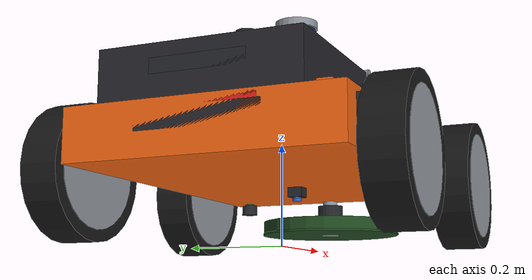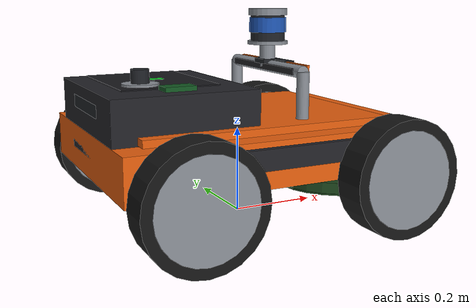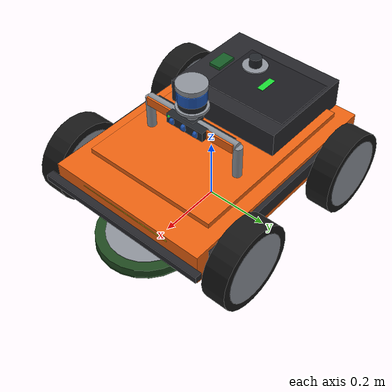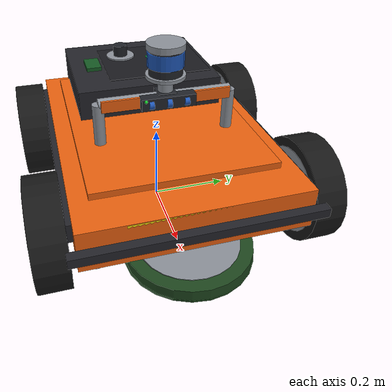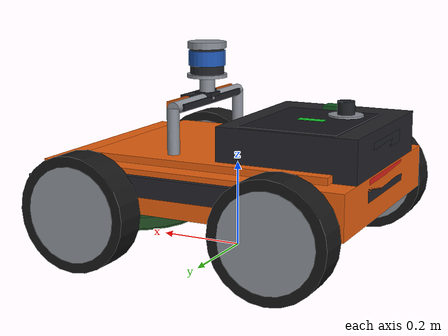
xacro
<?xml version="1.0"?>
<robot xmlns:xacro="http://www.ros.org/wiki/xacro"
       xmlns:gz="http://gazebosim.org/schema"
       name="lawnmower">

  <!-- ===== CHASSIS ===== -->
  <!-- Low-profile, wide mower body -->
  <xacro:property name="base_l"  value="0.72"/>
  <xacro:property name="base_w"  value="0.52"/>
  <xacro:property name="base_h"  value="0.10"/>   <!-- flatter than agribot -->
  <xacro:property name="base_m"  value="22.0"/>   <!-- heavier: battery + deck motor -->

  <!-- ===== WHEELS ===== -->
  <!-- Larger rear drive wheels typical of mowers -->
  <xacro:property name="wr"    value="0.130"/>   <!-- radius -->
  <xacro:property name="ww"    value="0.075"/>   <!-- width  -->
  <xacro:property name="wm"    value="1.6"/>     <!-- mass   -->
  <xacro:property name="wx"    value="0.230"/>   <!-- half wheelbase -->
  <xacro:property name="wy"    value="0.310"/>   <!-- half track -->

  <!-- ===== CUTTING DECK ARM ===== -->
  <xacro:property name="deck_r" value="0.016"/>  <!-- arm tube radius -->

  <!-- ==============================================================
       INERTIA HELPERS
       ============================================================== -->
  <xacro:macro name="box_inertia" params="m l w h">
    <inertial>
      <mass value="${m}"/>
      <inertia ixx="${m*(w*w+h*h)/12}" ixy="0" ixz="0"
               iyy="${m*(l*l+h*h)/12}" iyz="0"
               izz="${m*(l*l+w*w)/12}"/>
    </inertial>
  </xacro:macro>

  <xacro:macro name="cyl_inertia" params="m r h">
    <inertial>
      <mass value="${m}"/>
      <inertia ixx="${m*(3*r*r+h*h)/12}" ixy="0" ixz="0"
               iyy="${m*(3*r*r+h*h)/12}" iyz="0"
               izz="${m*r*r/2}"/>
    </inertial>
  </xacro:macro>

  <xacro:macro name="null_inertia">
    <inertial>
      <mass value="0.001"/>
      <inertia ixx="0.000001" ixy="0" ixz="0" iyy="0.000001" iyz="0" izz="0.000001"/>
    </inertial>
  </xacro:macro>

  <!-- ==============================================================
       MATERIALS
       ============================================================== -->
  <!-- Chassis — bright safety orange (consumer mower aesthetic) -->
  <material name="body_orange">  <color rgba="0.92 0.38 0.06 1.0"/></material>
  <!-- Accent — dark charcoal for trim panels -->
  <material name="accent_dark">  <color rgba="0.14 0.14 0.16 1.0"/></material>
  <!-- Frame rails — brushed aluminium -->
  <material name="alu_frame">    <color rgba="0.55 0.57 0.60 1.0"/></material>
  <!-- Tyre rubber -->
  <material name="rubber_black"> <color rgba="0.09 0.09 0.09 1.0"/></material>
  <!-- Wheel hub -->
  <material name="hub_alloy">    <color rgba="0.78 0.80 0.83 1.0"/></material>
  <!-- Sensor housing — dark charcoal -->
  <material name="sensor_dark">  <color rgba="0.13 0.14 0.16 1.0"/></material>
  <!-- Sensor glass / lens -->
  <material name="lens_blue">    <color rgba="0.18 0.44 0.88 0.85"/></material>
  <!-- PCB green -->
  <material name="pcb_green">    <color rgba="0.08 0.35 0.14 1.0"/></material>
  <!-- Battery black -->
  <material name="batt_dark">    <color rgba="0.10 0.10 0.12 1.0"/></material>
  <!-- Status LED yellow -->
  <material name="led_yellow">   <color rgba="0.95 0.85 0.05 1.0"/></material>
  <!-- Status LED red -->
  <material name="led_red">      <color rgba="0.88 0.12 0.10 1.0"/></material>
  <!-- Status LED green -->
  <material name="led_green">    <color rgba="0.10 0.85 0.20 1.0"/></material>
  <!-- Cutting deck / blade — steel silver -->
  <material name="steel_silver"> <color rgba="0.72 0.74 0.78 1.0"/></material>
  <!-- Blade disc (spinning) — polished steel -->
  <material name="blade_steel">  <color rgba="0.85 0.87 0.90 1.0"/></material>
  <!-- Deck housing — dark green plastic (grass stains!) -->
  <material name="deck_green">   <color rgba="0.12 0.28 0.12 1.0"/></material>

  <!-- ==============================================================
       WHEEL MACRO
       Knobby lawn mower tyre with hub
       ============================================================== -->
  <xacro:macro name="wheel" params="prefix x_s y_s">
    <link name="${prefix}_wheel">
      <!-- Main tyre -->
      <visual>
        <origin xyz="0 0 0" rpy="${pi/2} 0 0"/>
        <geometry><cylinder radius="${wr}" length="${ww}"/></geometry>
        <material name="rubber_black"/>
      </visual>
      <!-- Inner rim channel -->
      <visual>
        <origin xyz="0 0 0" rpy="${pi/2} 0 0"/>
        <geometry><cylinder radius="${wr*0.82}" length="${ww*1.02}"/></geometry>
        <material name="alu_frame"/>
      </visual>
      <!-- Hub disc -->
      <visual>
        <origin xyz="0 ${y_s*0.015} 0" rpy="${pi/2} 0 0"/>
        <geometry><cylinder radius="${wr*0.48}" length="${ww*0.30}"/></geometry>
        <material name="hub_alloy"/>
      </visual>
      <!-- Hub centre cap — orange accent matching body -->
      <visual>
        <origin xyz="0 ${y_s*0.022} 0" rpy="${pi/2} 0 0"/>
        <geometry><cylinder radius="${wr*0.15}" length="${ww*0.20}"/></geometry>
        <material name="body_orange"/>
      </visual>
      <collision>
        <origin xyz="0 0 0" rpy="${pi/2} 0 0"/>
        <geometry><cylinder radius="${wr}" length="${ww}"/></geometry>
      </collision>
      <xacro:cyl_inertia m="${wm}" r="${wr}" h="${ww}"/>
    </link>

    <joint name="${prefix}_wheel_joint" type="continuous">
      <parent link="base_link"/>
      <child  link="${prefix}_wheel"/>
      <origin xyz="${x_s*wx} ${y_s*wy} ${-base_h/2 + 0.005}" rpy="0 0 0"/>
      <axis xyz="0 1 0"/>
      <!-- Mowers are slower — lower velocity limit -->
      <limit effort="30.0" velocity="8.0"/>
      <dynamics damping="0.30" friction="0.60"/>
    </joint>

    <gazebo reference="${prefix}_wheel">
      <!-- Tuned for grass contact: higher lateral friction -->
      <mu1>1.2</mu1>
      <mu2>0.20</mu2>
      <fdir1>1 0 0</fdir1>
      <kp>6e5</kp>
      <kd>25.0</kd>
      <material>Gazebo/Black</material>
    </gazebo>
  </xacro:macro>

  <!-- ==============================================================
       BASE FOOTPRINT
       ============================================================== -->
  <link name="base_footprint"/>
  <joint name="base_footprint_joint" type="fixed">
    <parent link="base_footprint"/>
    <child  link="base_link"/>
    <origin xyz="0 0 ${wr + base_h/2 - 0.005}" rpy="0 0 0"/>
  </joint>

  <!-- ==============================================================
       BASE LINK — multi-visual low-profile mower chassis
       ============================================================== -->
  <link name="base_link">
    <!-- Main body shell — wide and flat -->
    <visual>
      <origin xyz="0 0 0" rpy="0 0 0"/>
      <geometry><box size="${base_l} ${base_w} ${base_h}"/></geometry>
      <material name="body_orange"/>
    </visual>
    <!-- Left side skirt panel (dark trim) -->
    <visual>
      <origin xyz="0 ${base_w/2 + 0.007} 0.015" rpy="0 0 0"/>
      <geometry><box size="${base_l*0.88} 0.014 ${base_h*0.45}"/></geometry>
      <material name="accent_dark"/>
    </visual>
    <!-- Right side skirt panel -->
    <visual>
      <origin xyz="0 ${-(base_w/2 + 0.007)} 0.015" rpy="0 0 0"/>
      <geometry><box size="${base_l*0.88} 0.014 ${base_h*0.45}"/></geometry>
      <material name="accent_dark"/>
    </visual>
    <!-- Front bumper bar (soft collision strip) -->
    <visual>
      <origin xyz="${base_l/2 + 0.018} 0 0.005" rpy="0 0 0"/>
      <geometry><box size="0.022 ${base_w + 0.04} 0.022"/></geometry>
      <material name="accent_dark"/>
    </visual>
    <!-- Rear discharge chute block-off plate -->
    <visual>
      <origin xyz="${-(base_l/2 - 0.010)} 0 0.015" rpy="0 0 0"/>
      <geometry><box size="0.020 ${base_w*0.45} 0.038"/></geometry>
      <material name="accent_dark"/>
    </visual>
    <!-- Top cover panel -->
    <visual>
      <origin xyz="-0.02 0 ${base_h/2 + 0.010}" rpy="0 0 0"/>
      <geometry><box size="${base_l*0.80} ${base_w*0.84} 0.016"/></geometry>
      <material name="body_orange"/>
    </visual>
    <!-- User control panel (rear, slightly raised dark pad) -->
    <visual>
      <origin xyz="${-(base_l/2 - 0.08)} 0 ${base_h/2 + 0.018}" rpy="0 0 0"/>
      <geometry><box size="0.100 0.130 0.010"/></geometry>
      <material name="accent_dark"/>
    </visual>
    <!-- Control panel LED strip: green = operational -->
    <visual>
      <origin xyz="${-(base_l/2 - 0.08)} 0 ${base_h/2 + 0.026}" rpy="0 0 0"/>
      <geometry><box size="0.008 0.080 0.006"/></geometry>
      <material name="led_green"/>
    </visual>
    <!-- Front status light bar (white/yellow for forward visibility) -->
    <visual>
      <origin xyz="${base_l/2 - 0.004} 0 0.040" rpy="0 0 0"/>
      <geometry><box size="0.008 ${base_w*0.60} 0.016"/></geometry>
      <material name="led_yellow"/>
    </visual>
    <!-- Rear brake/safety light strip (red) -->
    <visual>
      <origin xyz="${-(base_l/2 - 0.004)} 0 0.040" rpy="0 0 0"/>
      <geometry><box size="0.008 ${base_w*0.42} 0.012"/></geometry>
      <material name="led_red"/>
    </visual>

    <collision>
      <origin xyz="0 0 0" rpy="0 0 0"/>
      <geometry><box size="${base_l} ${base_w} ${base_h}"/></geometry>
    </collision>
    <xacro:box_inertia m="${base_m}" l="${base_l}" w="${base_w}" h="${base_h}"/>
  </link>

  <gazebo reference="base_link">
    <material>Gazebo/Orange</material>
  </gazebo>

  <!-- ===== FOUR WHEELS ===== -->
  <xacro:wheel prefix="fl" x_s=" 1" y_s=" 1"/>
  <xacro:wheel prefix="fr" x_s=" 1" y_s="-1"/>
  <xacro:wheel prefix="rl" x_s="-1" y_s=" 1"/>
  <xacro:wheel prefix="rr" x_s="-1" y_s="-1"/>

  <link name="elec_bay">
    <!-- Main bay shell -->
    <visual>
      <origin xyz="0 0 0" rpy="0 0 0"/>
      <geometry><box size="0.32 0.38 0.095"/></geometry>
      <material name="accent_dark"/>
    </visual>
    <!-- Main Li-ion battery pack (dominant, takes most of bay) -->
    <visual>
      <origin xyz="0 0.04 0.020" rpy="0 0 0"/>
      <geometry><box size="0.22 0.28 0.060"/></geometry>
      <material name="batt_dark"/>
    </visual>
    <!-- Battery charge indicator strip (top face) -->
    <visual>
      <origin xyz="0 0.04 0.0495" rpy="0 0 0"/>
      <geometry><box size="0.060 0.020 0.004"/></geometry>
      <material name="led_green"/>
    </visual>
    <!-- Motor controller board (right of battery) -->
    <visual>
      <origin xyz="0 -0.13 0.026" rpy="0 0 0"/>
      <geometry><box size="0.16 0.080 0.035"/></geometry>
      <material name="pcb_green"/>
    </visual>
    <!-- Compute module (SBC e.g. Raspberry Pi CM4 or Jetson Orin NX) -->
    <visual>
      <origin xyz="0 -0.13 0.0525" rpy="0 0 0"/>
      <geometry><box size="0.068 0.040 0.010"/></geometry>
      <material name="pcb_green"/>
    </visual>
    <!-- Connector panel (rear face) -->
    <visual>
      <origin xyz="${-0.32/2 + 0.003} 0 0.008" rpy="0 0 0"/>
      <geometry><box size="0.006 0.18 0.028"/></geometry>
      <material name="sensor_dark"/>
    </visual>
    <xacro:box_inertia m="5.5" l="0.32" w="0.38" h="0.095"/>
  </link>

  <joint name="elec_bay_joint" type="fixed">
    <parent link="base_link"/>
    <child  link="elec_bay"/>
    <origin xyz="-0.20 0 ${base_h/2 + 0.0475}" rpy="0 0 0"/>
  </joint>

  <link name="sensor_mast">

    <!-- ── Left arch leg ── -->
    <visual>
      <!-- Leg base sits at chassis top (z=0), rises to crossbar (z=0.120).
           Cylinder centre at z = 0.060, length 0.122 for a small overlap. -->
      <origin xyz="0 0.160 0.060" rpy="0 0 0"/>
      <geometry><cylinder radius="0.014" length="0.122"/></geometry>
      <material name="alu_frame"/>
    </visual>
    <!-- Left leg foot collar (orange accent at chassis surface) -->
    <visual>
      <origin xyz="0 0.160 0.006" rpy="0 0 0"/>
      <geometry><cylinder radius="0.022" length="0.012"/></geometry>
      <material name="body_orange"/>
    </visual>

    <!-- ── Right arch leg ── -->
    <visual>
      <origin xyz="0 -0.160 0.060" rpy="0 0 0"/>
      <geometry><cylinder radius="0.014" length="0.122"/></geometry>
      <material name="alu_frame"/>
    </visual>
    <!-- Right leg foot collar -->
    <visual>
      <origin xyz="0 -0.160 0.006" rpy="0 0 0"/>
      <geometry><cylinder radius="0.022" length="0.012"/></geometry>
      <material name="body_orange"/>
    </visual>

    <!-- ── Horizontal crossbar ── (spans between leg tops) -->
    <!-- Main crossbar tube: spans y = -0.160..+0.160, depth in x = 0.030 -->
    <visual>
      <origin xyz="0 0 0.120" rpy="${pi/2} 0 0"/>
      <geometry><cylinder radius="0.014" length="0.320"/></geometry>
      <material name="alu_frame"/>
    </visual>
    <!-- Crossbar front face strip (orange highlight) -->
    <visual>
      <origin xyz="0.016 0 0.120" rpy="0 0 0"/>
      <geometry><box size="0.006 0.310 0.028"/></geometry>
      <material name="body_orange"/>
    </visual>
    <!-- Crossbar cable conduit (dark channel running along rear face) -->
    <visual>
      <origin xyz="-0.012 0 0.120" rpy="0 0 0"/>
      <geometry><box size="0.010 0.280 0.014"/></geometry>
      <material name="accent_dark"/>
    </visual>

    <!-- ── Central LiDAR riser (short stub on crossbar top-centre) ── -->
    <visual>
      <origin xyz="0 0 0.148" rpy="0 0 0"/>
      <geometry><cylinder radius="0.018" length="0.058"/></geometry>
      <material name="alu_frame"/>
    </visual>
    <!-- Riser mounting plate (square pad) -->
    <visual>
      <origin xyz="0 0 0.132" rpy="0 0 0"/>
      <geometry><box size="0.044 0.044 0.010"/></geometry>
      <material name="sensor_dark"/>
    </visual>

    <xacro:box_inertia m="0.55" l="0.030" w="0.320" h="0.170"/>
  </link>

  <!-- sensor_mast joint: anchored to base_link top, slightly forward of centre -->
  <joint name="mast_joint" type="fixed">
    <parent link="base_link"/>
    <child  link="sensor_mast"/>
    <!-- x=0.08 forward, z=base_h/2 (top surface of chassis) -->
    <origin xyz="0.08 0 ${base_h/2}" rpy="0 0 0"/>
  </joint>

  <!-- ==============================================================
       3D LiDAR — atop mast, obstacle + boundary avoidance
       ============================================================== -->
  <link name="lidar_link">
    <visual>
      <origin xyz="0 0 0" rpy="0 0 0"/>
      <geometry><cylinder radius="0.040" length="0.065"/></geometry>
      <material name="sensor_dark"/>
    </visual>
    <visual>
      <origin xyz="0 0 0.036" rpy="0 0 0"/>
      <geometry><cylinder radius="0.045" length="0.015"/></geometry>
      <material name="alu_frame"/>
    </visual>
    <!-- Scanning window band -->
    <visual>
      <origin xyz="0 0 0.006" rpy="0 0 0"/>
      <geometry><cylinder radius="0.043" length="0.034"/></geometry>
      <material name="lens_blue"/>
    </visual>
    <visual>
      <origin xyz="0 0 -0.035" rpy="0 0 0"/>
      <geometry><cylinder radius="0.047" length="0.008"/></geometry>
      <material name="alu_frame"/>
    </visual>
    <collision>
      <origin xyz="0 0 0" rpy="0 0 0"/>
      <geometry><cylinder radius="0.048" length="0.068"/></geometry>
    </collision>
    <xacro:cyl_inertia m="0.48" r="0.040" h="0.065"/>
  </link>

  <joint name="lidar_joint" type="fixed">
    <parent link="sensor_mast"/>
    <child  link="lidar_link"/>
    <!-- Riser top at z=0.177 rel sensor_mast; LiDAR centre 0.033 above that -->
    <origin xyz="0 0 0.210" rpy="0 0 0"/>
  </joint>

  <gazebo reference="lidar_link">
    <sensor name="lidar_3d" type="gpu_lidar">
      <pose>0 0 0 0 0 0</pose>
      <visualize>false</visualize>
      <update_rate>10</update_rate>
      <ray>
        <scan>
          <horizontal>
            <samples>512</samples>
            <resolution>1</resolution>
            <min_angle>${-pi}</min_angle>
            <max_angle>${pi}</max_angle>
          </horizontal>
          <vertical>
            <!-- Narrower vertical FOV than agribot: mower environment is flat -->
            <samples>8</samples>
            <resolution>1</resolution>
            <min_angle>${-pi*10/180}</min_angle>
            <max_angle>${pi*10/180}</max_angle>
          </vertical>
        </scan>
        <range>
          <min>0.10</min>
          <!-- Shorter max range: garden scale -->
          <max>30.0</max>
          <resolution>0.004</resolution>
        </range>
        <noise>
          <type>gaussian</type>
          <mean>0.0</mean>
          <stddev>0.008</stddev>
        </noise>
      </ray>
      <topic>/lidar/points</topic>
    </sensor>
    <material>Gazebo/Black</material>
  </gazebo>

  <!-- ==============================================================
       STEREO DEPTH CAMERA — person, pet, and obstacle detection
       ============================================================== -->
  <link name="stereo_camera_link">
    <visual>
      <origin xyz="0 0 0" rpy="0 0 0"/>
      <geometry><box size="0.026 0.130 0.030"/></geometry>
      <material name="sensor_dark"/>
    </visual>
    <!-- Left lens -->
    <visual>
      <origin xyz="0.014 -0.042 0" rpy="${pi/2} 0 0"/>
      <geometry><cylinder radius="0.009" length="0.010"/></geometry>
      <material name="lens_blue"/>
    </visual>
    <!-- RGB centre -->
    <visual>
      <origin xyz="0.014 0 0" rpy="${pi/2} 0 0"/>
      <geometry><cylinder radius="0.010" length="0.010"/></geometry>
      <material name="lens_blue"/>
    </visual>
    <!-- Right lens -->
    <visual>
      <origin xyz="0.014 0.042 0" rpy="${pi/2} 0 0"/>
      <geometry><cylinder radius="0.009" length="0.010"/></geometry>
      <material name="lens_blue"/>
    </visual>
    <visual>
      <origin xyz="0.014 -0.055 0.010" rpy="${pi/2} 0 0"/>
      <geometry><sphere radius="0.004"/></geometry>
      <material name="led_green"/>
    </visual>
    <collision>
      <origin xyz="0 0 0" rpy="0 0 0"/>
      <geometry><box size="0.028 0.130 0.032"/></geometry>
    </collision>
    <xacro:box_inertia m="0.090" l="0.028" w="0.130" h="0.032"/>
  </link>

  <joint name="stereo_camera_joint" type="fixed">
    <parent link="sensor_mast"/>
    <child  link="stereo_camera_link"/>
    <!-- Mounted on crossbar front face, centred, at crossbar height -->
    <origin xyz="0.022 0 0.120" rpy="0 0 0"/>
  </joint>

  <link name="stereo_camera_optical"/>
  <joint name="stereo_optical_joint" type="fixed">
    <parent link="stereo_camera_link"/>
    <child  link="stereo_camera_optical"/>
    <origin xyz="0 0 0" rpy="${-pi/2} 0 ${-pi/2}"/>
  </joint>

  <gazebo reference="stereo_camera_link">
    <sensor name="stereo_depth" type="depth">
      <gz:frame_id>stereo_camera_optical</gz:frame_id>
      <pose>0 0 0 0 0 0</pose>
      <visualize>false</visualize>
      <update_rate>10</update_rate>
      <camera>
        <horizontal_fov>1.518</horizontal_fov>
        <image>
          <width>320</width>
          <height>240</height>
          <format>R8G8B8</format>
        </image>
        <clip><near>0.08</near><far>8.0</far></clip>
        <noise>
          <type>gaussian</type>
          <mean>0.0</mean>
          <stddev>0.002</stddev>
        </noise>
      </camera>
      <topic>/camera/depth</topic>
    </sensor>
    <material>Gazebo/Black</material>
  </gazebo>

  <link name="nadir_camera_link">
    <visual>
      <origin xyz="0 0 0" rpy="0 0 0"/>
      <geometry><box size="0.030 0.030 0.020"/></geometry>
      <material name="sensor_dark"/>
    </visual>
    <visual>
      <origin xyz="0 0 -0.013" rpy="0 0 0"/>
      <geometry><cylinder radius="0.009" length="0.010"/></geometry>
      <material name="lens_blue"/>
    </visual>
    <xacro:null_inertia/>
  </link>

  <joint name="nadir_camera_joint" type="fixed">
    <parent link="base_link"/>
    <child  link="nadir_camera_link"/>
    <!-- Angled 45 degrees forward to troubleshoot the view while keeping position -->
    <origin xyz="0.08 0 ${-base_h/2 - 0.010}" rpy="0 ${pi*4} 0"/>
  </joint>

  <link name="nadir_camera_optical"/>
  <joint name="nadir_optical_joint" type="fixed">
    <parent link="nadir_camera_link"/>
    <child  link="nadir_camera_optical"/>
    <origin xyz="0 0 0" rpy="${-pi/2} 0 ${-pi/2}"/>
  </joint>

  <gazebo reference="nadir_camera_link">
    <sensor name="nadir_cam" type="camera">
      <gz:frame_id>nadir_camera_optical</gz:frame_id>
      <update_rate>5</update_rate>
      <visualize>false</visualize>
      <topic>/camera/nadir</topic>
      <camera>
        <!-- Reduced resolution for better performance -->
        <horizontal_fov>1.222</horizontal_fov>
        <image><width>320</width><height>240</height><format>R8G8B8</format></image>
        <clip><near>0.05</near><far>1.5</far></clip>
      </camera>
    </sensor>
    <material>Gazebo/Black</material>
  </gazebo>

  <!-- ==============================================================
       IMU
       ============================================================== -->
  <link name="imu_link">
    <visual>
      <origin xyz="0 0 0" rpy="0 0 0"/>
      <geometry><box size="0.026 0.026 0.007"/></geometry>
      <material name="led_red"/>
    </visual>
    <xacro:null_inertia/>
  </link>

  <joint name="imu_joint" type="fixed">
    <parent link="base_link"/>
    <child  link="imu_link"/>
    <origin xyz="0 0 0" rpy="0 0 0"/>
  </joint>

  <gazebo reference="imu_link">
    <sensor name="imu" type="imu">
      <always_on>true</always_on>
      <update_rate>400</update_rate>
      <imu>
        <angular_velocity>
          <x><noise type="gaussian"><mean>0</mean><stddev>0.00018</stddev></noise></x>
          <y><noise type="gaussian"><mean>0</mean><stddev>0.00018</stddev></noise></y>
          <z><noise type="gaussian"><mean>0</mean><stddev>0.00018</stddev></noise></z>
        </angular_velocity>
        <linear_acceleration>
          <x><noise type="gaussian"><mean>0</mean><stddev>0.009</stddev></noise></x>
          <y><noise type="gaussian"><mean>0</mean><stddev>0.009</stddev></noise></y>
          <z><noise type="gaussian"><mean>0</mean><stddev>0.009</stddev></noise></z>
        </linear_acceleration>
      </imu>
      <topic>/imu/data_raw</topic>
    </sensor>
  </gazebo>

  <!-- ==============================================================
       GPS (RTK for centimetre-level boundary tracking)
       ============================================================== -->
  <link name="gps_link">
    <visual>
      <origin xyz="0 0 0.0035" rpy="0 0 0"/>
      <geometry><cylinder radius="0.040" length="0.007"/></geometry>
      <material name="alu_frame"/>
    </visual>
    <visual>
      <origin xyz="0 0 0.022" rpy="0 0 0"/>
      <geometry><cylinder radius="0.020" length="0.030"/></geometry>
      <material name="sensor_dark"/>
    </visual>
    <xacro:null_inertia/>
  </link>

  <joint name="gps_joint" type="fixed">
    <parent link="elec_bay"/>
    <child  link="gps_link"/>
    <origin xyz="-0.05 -0.04 0.0475" rpy="0 0 0"/>
  </joint>

  <gazebo reference="gps_link">
    <sensor name="navsat" type="navsat">
      <always_on>true</always_on>
      <!-- Higher rate for RTK corrections -->
      <update_rate>20</update_rate>
      <topic>/gps/fix</topic>
    </sensor>
  </gazebo>

  <link name="perimeter_rx_left">
    <!-- Small coil housing -->
    <visual>
      <origin xyz="0 0 0" rpy="0 0 0"/>
      <geometry><cylinder radius="0.018" length="0.022"/></geometry>
      <material name="sensor_dark"/>
    </visual>
    <visual>
      <origin xyz="0 0 0.013" rpy="0 0 0"/>
      <geometry><cylinder radius="0.012" length="0.008"/></geometry>
      <material name="pcb_green"/>
    </visual>
    <xacro:null_inertia/>
  </link>
  <joint name="perimeter_rx_left_joint" type="fixed">
    <parent link="base_link"/>
    <child  link="perimeter_rx_left"/>
    <origin xyz="${base_l/2 - 0.04} ${base_w/2 - 0.04} ${-base_h/2 - 0.014}" rpy="0 0 0"/>
  </joint>

  <link name="perimeter_rx_right">
    <visual>
      <origin xyz="0 0 0" rpy="0 0 0"/>
      <geometry><cylinder radius="0.018" length="0.022"/></geometry>
      <material name="sensor_dark"/>
    </visual>
    <visual>
      <origin xyz="0 0 0.013" rpy="0 0 0"/>
      <geometry><cylinder radius="0.012" length="0.008"/></geometry>
      <material name="pcb_green"/>
    </visual>
    <xacro:null_inertia/>
  </link>
  <joint name="perimeter_rx_right_joint" type="fixed">
    <parent link="base_link"/>
    <child  link="perimeter_rx_right"/>
    <origin xyz="${base_l/2 - 0.04} ${-(base_w/2 - 0.04)} ${-base_h/2 - 0.014}" rpy="0 0 0"/>
  </joint>

  <!-- Deck turret / pivot — short squat cylinder, mostly above chassis floor -->
  <link name="deck_turret">
    <!-- Body sits above the joint origin (z=+0.020 puts it inside chassis floor) -->
    <visual>
      <origin xyz="0 0 0.020" rpy="0 0 0"/>
      <geometry><cylinder radius="0.032" length="0.035"/></geometry>
      <material name="sensor_dark"/>
    </visual>
    <!-- Rotation indicator ring flush at joint plane -->
    <visual>
      <origin xyz="0 0 0.002" rpy="0 0 0"/>
      <geometry><cylinder radius="0.036" length="0.007"/></geometry>
      <material name="body_orange"/>
    </visual>
    <xacro:cyl_inertia m="0.18" r="0.032" h="0.035"/>
  </link>

  <!-- Turret yaw: ±30° edge trimming alignment -->
  <joint name="deck_turret_joint" type="revolute">
    <parent link="base_link"/>
    <child  link="deck_turret"/>
    <!-- Front of chassis, 2 mm above floor so turret body stays inside -->
    <origin xyz="${base_l/2 - 0.08} 0 ${-base_h/2 + 0.002}" rpy="0 0 0"/>
    <axis xyz="0 0 1"/>
    <limit lower="${-pi/6}" upper="${pi/6}" effort="10.0" velocity="0.8"/>
    <dynamics damping="0.6" friction="0.25"/>
  </joint>

  <link name="deck_arm">
    <!-- Arm tube: from pitch joint (z=0) down to blade plane (z=-0.072) -->
    <visual>
      <origin xyz="0 0 -0.036" rpy="0 0 0"/>
      <geometry><cylinder radius="${deck_r}" length="0.072"/></geometry>
      <material name="alu_frame"/>
    </visual>
    <!-- Motor pod (spindle motor housing, sits mid-tube) -->
    <visual>
      <origin xyz="0 0 -0.026" rpy="0 0 0"/>
      <geometry><cylinder radius="0.028" length="0.032"/></geometry>
      <material name="sensor_dark"/>
    </visual>

    <!-- Deck housing shell — shallow disc enclosing the blade.
         Centre at z=-0.060 (12 mm above blade plane), height=0.028.
         Bottom at z=-0.074 → world Z = 0.117 - 0.074 = 0.043 m ✓ -->
    <visual>
      <origin xyz="0 0 -0.060" rpy="0 0 0"/>
      <geometry><cylinder radius="0.150" length="0.028"/></geometry>
      <material name="deck_green"/>
    </visual>
    <!-- Deck top reinforcement ring (aluminium inner ring) -->
    <visual>
      <origin xyz="0 0 -0.048" rpy="0 0 0"/>
      <geometry><cylinder radius="0.120" length="0.008"/></geometry>
      <material name="alu_frame"/>
    </visual>
    <!-- Deck lip / skirt (thin wall extending down from housing edge) -->
    <visual>
      <origin xyz="0 0 -0.074" rpy="0 0 0"/>
      <geometry><cylinder radius="0.152" length="0.004"/></geometry>
      <material name="deck_green"/>
    </visual>
    <!-- Rear discharge chute opening (cut-out represented by a dark box) -->
    <visual>
      <origin xyz="-0.120 0 -0.060" rpy="0 0 0"/>
      <geometry><box size="0.038 0.080 0.022"/></geometry>
      <material name="accent_dark"/>
    </visual>
    <!-- Deck height-adjust label strip (orange band on housing top) -->
    <visual>
      <origin xyz="0 0.118 -0.048" rpy="0 0 0"/>
      <geometry><box size="0.040 0.008 0.010"/></geometry>
      <material name="body_orange"/>
    </visual>

    <collision>
      <origin xyz="0 0 -0.060" rpy="0 0 0"/>
      <geometry><cylinder radius="0.152" length="0.030"/></geometry>
    </collision>
    <xacro:cyl_inertia m="0.75" r="0.150" h="0.032"/>
  </link>

  <!-- Pitch joint: ±5° terrain following (not primary height control —
       cut height is set mechanically via spacer; this joint lets the
       deck float over undulations without stalling the drive) -->
  <joint name="deck_pitch_joint" type="revolute">
    <parent link="deck_turret"/>
    <child  link="deck_arm"/>
    <!-- 10 mm below turret joint → world Z = 0.117 m -->
    <origin xyz="0 0 -0.010" rpy="0 0 0"/>
    <axis xyz="0 1 0"/>
    <!-- ±5° float range for terrain compliance -->
    <limit lower="${-pi*5/180}" upper="${pi*5/180}" effort="18.0" velocity="0.5"/>
    <dynamics damping="1.2" friction="0.40"/>
  </joint>

  <!-- Blade assembly — two crossed bars on a central hub.
       Sits at z=-0.072 rel pitch joint → world Z = 0.045 m (45 mm) -->
  <link name="blade_assembly">
    <!-- Central spindle hub -->
    <visual>
      <origin xyz="0 0 0" rpy="0 0 0"/>
      <geometry><cylinder radius="0.020" length="0.010"/></geometry>
      <material name="steel_silver"/>
    </visual>
    <!-- Primary blade bar (full width 280 mm) -->
    <visual>
      <origin xyz="0 0 0" rpy="0 0 0"/>
      <geometry><box size="0.280 0.026 0.004"/></geometry>
      <material name="blade_steel"/>
    </visual>
    <!-- Secondary mulching bar (slightly narrower, rotated 90°) -->
    <visual>
      <origin xyz="0 0 0" rpy="0 0 ${pi/2}"/>
      <geometry><box size="0.260 0.020 0.003"/></geometry>
      <material name="blade_steel"/>
    </visual>
    <collision>
      <origin xyz="0 0 0" rpy="0 0 0"/>
      <geometry><cylinder radius="0.140" length="0.006"/></geometry>
    </collision>
    <xacro:cyl_inertia m="0.35" r="0.130" h="0.005"/>
  </link>

  <!-- Blade continuous joint — velocity-controlled by JointVelocityController -->
  <!-- Positive CCW from above (standard convention) -->
  <joint name="blade_joint" type="continuous">
    <parent link="deck_arm"/>
    <child  link="blade_assembly"/>
    <!-- At z=-0.072 rel pitch joint → world Z = 0.045 m ✓ -->
    <origin xyz="0 0 -0.072" rpy="0 0 0"/>
    <axis xyz="0 0 1"/>
    <!-- 4500 RPM ≈ 471 rad/s, 350 W brushless motor -->
    <limit effort="50.0" velocity="471.0"/>
    <dynamics damping="0.05" friction="0.80"/>
  </joint>

  <!-- ==============================================================
       GAZEBO PLUGINS
       ============================================================== -->
  <gazebo>
    <!-- 4WD Differential Drive (same topology as agribot) -->
    <plugin filename="gz-sim-diff-drive-system" name="gz::sim::systems::DiffDrive">
      <left_joint>fl_wheel_joint</left_joint>
      <left_joint>rl_wheel_joint</left_joint>
      <right_joint>fr_wheel_joint</right_joint>
      <right_joint>rr_wheel_joint</right_joint>
      <wheel_separation>${wy * 2.0}</wheel_separation>
      <wheel_radius>${wr}</wheel_radius>
      <odom_publish_frequency>50</odom_publish_frequency>
      <!-- Mower: slower, precise linear motion -->
      <max_linear_acceleration>0.8</max_linear_acceleration>
      <max_angular_acceleration>1.5</max_angular_acceleration>
      <topic>/cmd_vel</topic>
      <odom_topic>/odom</odom_topic>
      <tf_topic>/tf</tf_topic>
      <frame_id>odom</frame_id>
      <child_frame_id>base_footprint</child_frame_id>
    </plugin>

    <!-- Joint states for all moving joints -->
    <plugin filename="gz-sim-joint-state-publisher-system" name="gz::sim::systems::JointStatePublisher">
      <topic>/joint_states</topic>
      <joint_name>fl_wheel_joint</joint_name>
      <joint_name>fr_wheel_joint</joint_name>
      <joint_name>rl_wheel_joint</joint_name>
      <joint_name>rr_wheel_joint</joint_name>
      <joint_name>deck_turret_joint</joint_name>
      <joint_name>deck_pitch_joint</joint_name>
      <joint_name>blade_joint</joint_name>
    </plugin>

    <!-- Deck turret (pan) PID — low gains, smooth heading correction -->
    <plugin filename="gz-sim-joint-position-controller-system" name="gz::sim::systems::JointPositionController">
      <joint_name>deck_turret_joint</joint_name>
      <topic>/deck/turret/cmd_pos</topic>
      <p_gain>12.0</p_gain><i_gain>0.15</i_gain><d_gain>0.8</d_gain>
      <i_max>1.5</i_max><i_min>-1.5</i_min>
      <cmd_max>10.0</cmd_max><cmd_min>-10.0</cmd_min>
    </plugin>

    <!-- Deck pitch (cut height) PID — stiff enough to resist ground reaction -->
    <plugin filename="gz-sim-joint-position-controller-system" name="gz::sim::systems::JointPositionController">
      <joint_name>deck_pitch_joint</joint_name>
      <topic>/deck/pitch/cmd_pos</topic>
      <p_gain>28.0</p_gain><i_gain>0.40</i_gain><d_gain>2.0</d_gain>
      <i_max>3.0</i_max><i_min>-3.0</i_min>
      <cmd_max>18.0</cmd_max><cmd_min>-18.0</cmd_min>
    </plugin>

    <!-- Blade velocity controller — targets ~4000 RPM = ~419 rad/s -->
    <plugin filename="gz-sim-joint-controller-system" name="gz::sim::systems::JointController">
      <joint_name>blade_joint</joint_name>
      <topic>/deck/blade/cmd_vel</topic>
      <p_gain>1.80</p_gain><i_gain>0.05</i_gain><d_gain>0.02</d_gain>
      <i_max>8.0</i_max><i_min>-8.0</i_min>
      <cmd_max>50.0</cmd_max><cmd_min>-50.0</cmd_min>
    </plugin>

    <!-- Ground-truth pose publisher -->
    <plugin filename="gz-sim-pose-publisher-system" name="gz::sim::systems::PosePublisher">
      <publish_link_pose>true</publish_link_pose>
      <publish_sensor_pose>true</publish_sensor_pose>
      <publish_collision_pose>false</publish_collision_pose>
      <publish_visual_pose>false</publish_visual_pose>
      <update_frequency>50</update_frequency>
      <topic>/ground_truth/pose</topic>
    </plugin>
  </gazebo>

</robot>
